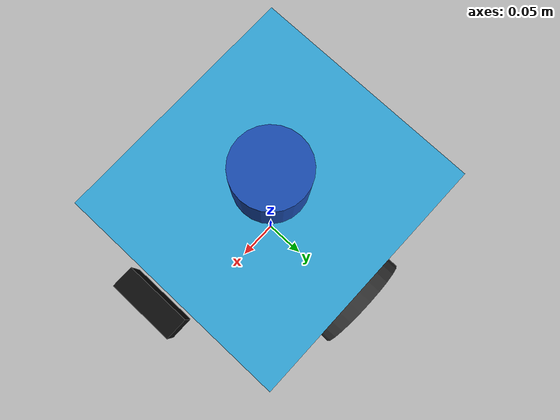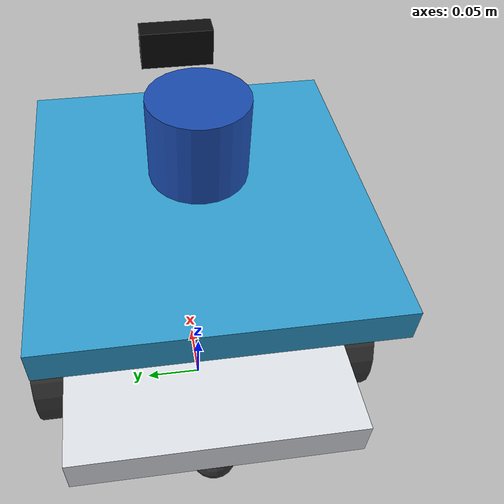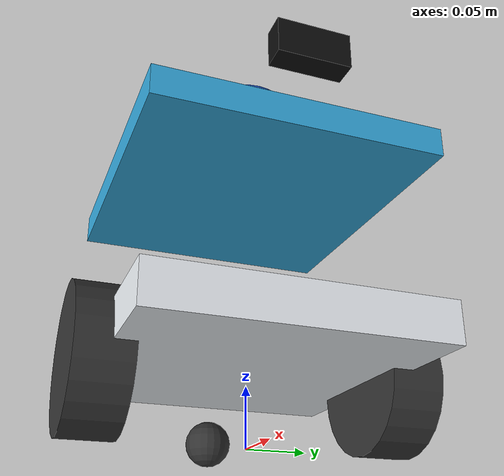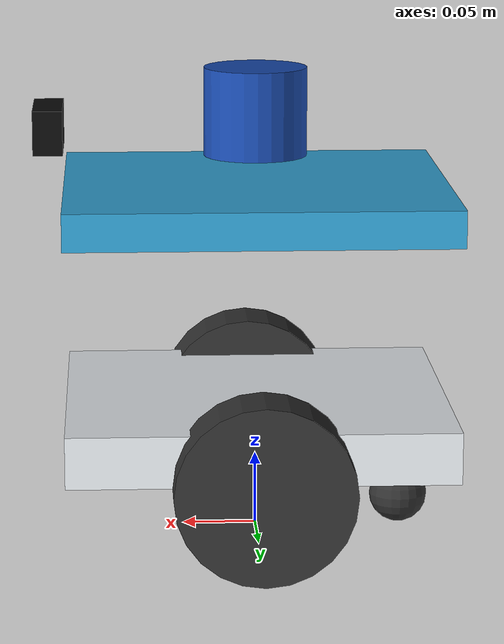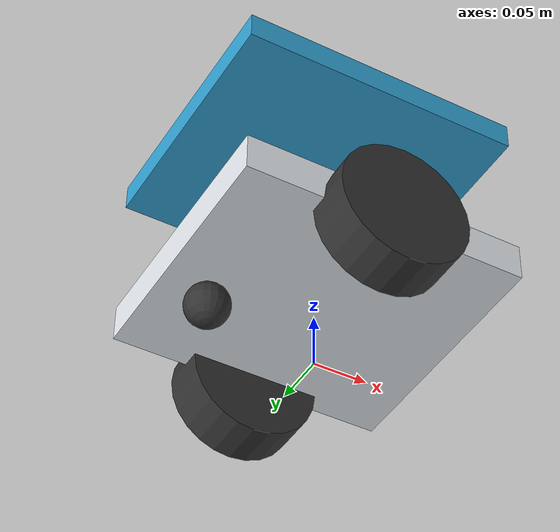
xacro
<?xml version="1.0"?>
<robot name="lumi_small_robot" xmlns:xacro="http://www.ros.org/wiki/xacro">

  <!--                      LUMI SMALL MOBILE ROBOT URDF                    -->
  <!-- Notes:                           -->
  <!-- LINK: Represents a rigid physical part of the robot (chassis, wheel). -->
  <!-- JOINT: Defines physical connection and degrees of freedom between    -->
  <!--        parent and child links (fixed, continuous, revolute).          -->
  <!-- INERTIA: Calculated rotational inertia components required by physics-->
  <!--          engines (Gazebo) to simulate mass distribution accurately.   -->
  <!-- GAZEBO PLUGINS: Simulates differential drive motor physics, 2D LiDAR  -->
  <!--                 laser scans, and camera video streams in ROS 2.      -->

  <!-- ==================== PARAMETERS & DIMENSIONS ==================== -->
  <!-- Estimated dimensions from photos using the 15 cm ruler as scale. Verify physically. -->
  <xacro:property name="chassis_length" value="0.26" /> <!-- estimated deck length: 26 cm -->
  <xacro:property name="chassis_width" value="0.24" />  <!-- estimated deck width: 24 cm -->
  <xacro:property name="chassis_height" value="0.035" /> <!-- lower plate thickness: 3.5 cm -->
  <xacro:property name="chassis_mass"   value="1.50" />   <!-- provisional lower plate mass -->
  <xacro:property name="chassis_radius" value="0.12" />

  <!-- Wheel Dimensions (Differential Drive) -->
  <xacro:property name="wheel_radius"   value="0.06" />   <!-- estimated wheel diameter: 12 cm -->
  <xacro:property name="wheel_width"    value="0.045" />  <!-- estimated wheel width: 4.5 cm -->
  <xacro:property name="wheel_track"    value="0.25" />   <!-- estimated distance between wheel centers: 25 cm -->
  <xacro:property name="wheel_mass"     value="0.30" />   <!-- provisional mass per wheel -->

  <!-- Caster Wheel (Rear Support) -->
  <xacro:property name="caster_radius"  value="0.02" />   <!-- 4cm diameter sphere -->
  <xacro:property name="caster_mass"    value="0.10" />   <!-- 100 grams -->
  <xacro:property name="caster_x_offset" value="-0.10" /> <!-- rear support position; verify physical base -->

  <!-- LiDAR Sensor -->
  <xacro:property name="lidar_radius"   value="0.035" />  <!-- approx. 7 cm diameter -->
  <xacro:property name="lidar_height"   value="0.06" />   <!-- provisional 6 cm scanner assembly height -->
  <xacro:property name="lidar_mass"     value="0.15" />   <!-- 150 grams -->

  <!-- Camera Sensor -->
  <xacro:property name="camera_length"  value="0.02" />
  <xacro:property name="camera_width"   value="0.06" />
  <xacro:property name="camera_height"  value="0.03" />
  <xacro:property name="camera_mass"    value="0.05" />

  <!-- ==================== MATERIALS & COLORS ==================== -->
  <material name="baymax_white">
    <color rgba="0.92 0.94 0.96 1.0"/>
  </material>

  <material name="baymax_accent">
    <color rgba="0.20 0.65 0.85 1.0"/>
  </material>

  <material name="dark_grey">
    <color rgba="0.20 0.20 0.20 1.0"/>
  </material>

  <material name="sensor_blue">
    <color rgba="0.10 0.30 0.70 1.0"/>
  </material>

  <material name="black">
    <color rgba="0.05 0.05 0.05 1.0"/>
  </material>

  <!-- ==================== INERTIAL CALCULATORS ==================== -->
  <xacro:macro name="cylinder_inertia" params="m r h">
    <inertial>
      <mass value="${m}"/>
      <inertia ixx="${(1/12)*m*(3*r*r + h*h)}" ixy="0.0" ixz="0.0"
               iyy="${(1/12)*m*(3*r*r + h*h)}" iyz="0.0"
               izz="${0.5*m*r*r}"/>
    </inertial>
  </xacro:macro>

  <xacro:macro name="sphere_inertia" params="m r">
    <inertial>
      <mass value="${m}"/>
      <inertia ixx="${(2/5)*m*r*r}" ixy="0.0" ixz="0.0"
               iyy="${(2/5)*m*r*r}" iyz="0.0"
               izz="${(2/5)*m*r*r}"/>
    </inertial>
  </xacro:macro>

  <xacro:macro name="box_inertia" params="m x y z">
    <inertial>
      <mass value="${m}"/>
      <inertia ixx="${(1/12)*m*(y*y + z*z)}" ixy="0.0" ixz="0.0"
               iyy="${(1/12)*m*(x*x + z*z)}" iyz="0.0"
               izz="${(1/12)*m*(x*x + y*y)}"/>
    </inertial>
  </xacro:macro>

  <!-- ==================== LINKS & JOINTS ==================== -->

  <!-- 1. BASE FOOTPRINT LINK (Ground Level Projection at Z = 0) -->
  <link name="base_footprint"/>

  <joint name="base_footprint_joint" type="fixed">
    <parent link="base_footprint"/>
    <child link="base_link"/>
    <origin xyz="0 0 ${wheel_radius}" rpy="0 0 0"/>
  </joint>

  <!-- 2. BASE LINK (Main Robot Chassis Body) -->
  <link name="base_link">
    <visual>
      <origin xyz="0 0 ${chassis_height/2}" rpy="0 0 0"/>
      <geometry>
        <box size="${chassis_length} ${chassis_width} ${chassis_height}"/>
      </geometry>
      <material name="baymax_white"/>
    </visual>

    <visual>
      <origin xyz="0 0 0.17" rpy="0 0 0"/>
      <geometry>
        <box size="${chassis_length} ${chassis_width} 0.025"/>
      </geometry>
      <material name="baymax_accent"/>
    </visual>

    <collision>
      <origin xyz="0 0 ${chassis_height/2}" rpy="0 0 0"/>
      <geometry>
        <box size="${chassis_length} ${chassis_width} ${chassis_height}"/>
      </geometry>
    </collision>

    <xacro:box_inertia m="${chassis_mass}" x="${chassis_length}" y="${chassis_width}" z="${chassis_height}"/>
  </link>

  <gazebo reference="base_link">
    <material>Gazebo/White</material>
  </gazebo>

  <!-- 3. WHEEL MACRO (Left and Right Differential Drive Wheels) -->
  <xacro:macro name="wheel" params="prefix y_reflect">
    <link name="${prefix}_wheel_link">
      <visual>
        <origin xyz="0 0 0" rpy="${pi/2} 0 0"/>
        <geometry>
          <cylinder radius="${wheel_radius}" length="${wheel_width}"/>
        </geometry>
        <material name="dark_grey"/>
      </visual>
      <collision>
        <origin xyz="0 0 0" rpy="${pi/2} 0 0"/>
        <geometry>
          <cylinder radius="${wheel_radius}" length="${wheel_width}"/>
        </geometry>
      </collision>
      <xacro:cylinder_inertia m="${wheel_mass}" r="${wheel_radius}" h="${wheel_width}"/>
    </link>

    <joint name="${prefix}_wheel_joint" type="continuous">
      <parent link="base_link"/>
      <child link="${prefix}_wheel_link"/>
      <origin xyz="0 ${y_reflect * wheel_track / 2} 0" rpy="0 0 0"/>
      <axis xyz="0 1 0"/>
    </joint>

    <gazebo reference="${prefix}_wheel_link">
      <material>Gazebo/DarkGrey</material>
      <mu1>1.0</mu1>
      <mu2>1.0</mu2>
      <kp>500000.0</kp>
      <kd>10.0</kd>
    </gazebo>
  </xacro:macro>

  <xacro:wheel prefix="left"  y_reflect="1" />
  <xacro:wheel prefix="right" y_reflect="-1" />

  <!-- 4. CASTER WHEEL (Rear Passive Balancing Ball) -->
  <link name="caster_wheel_link">
    <visual>
      <origin xyz="0 0 0" rpy="0 0 0"/>
      <geometry>
        <sphere radius="${caster_radius}"/>
      </geometry>
      <material name="dark_grey"/>
    </visual>
    <collision>
      <origin xyz="0 0 0" rpy="0 0 0"/>
      <geometry>
        <sphere radius="${caster_radius}"/>
      </geometry>
    </collision>
    <xacro:sphere_inertia m="${caster_mass}" r="${caster_radius}"/>
  </link>

  <joint name="caster_wheel_joint" type="fixed">
    <parent link="base_link"/>
    <child link="caster_wheel_link"/>
    <origin xyz="${caster_x_offset} 0 ${caster_radius - wheel_radius}" rpy="0 0 0"/>
  </joint>

  <!-- Low surface friction for caster wheel so it slides smoothly in Gazebo -->
  <gazebo reference="caster_wheel_link">
    <material>Gazebo/DarkGrey</material>
    <mu1>0.001</mu1>
    <mu2>0.001</mu2>
  </gazebo>

  <!-- 5. LIDAR SENSOR LINK -->
  <link name="lidar_link">
    <visual>
      <origin xyz="0 0 0" rpy="0 0 0"/>
      <geometry>
        <cylinder radius="${lidar_radius}" length="${lidar_height}"/>
      </geometry>
      <material name="sensor_blue"/>
    </visual>
    <collision>
      <origin xyz="0 0 0" rpy="0 0 0"/>
      <geometry>
        <cylinder radius="${lidar_radius}" length="${lidar_height}"/>
      </geometry>
    </collision>
    <xacro:cylinder_inertia m="${lidar_mass}" r="${lidar_radius}" h="${lidar_height}"/>
  </link>

  <joint name="lidar_joint" type="fixed">
    <parent link="base_link"/>
    <child link="lidar_link"/>
    <origin xyz="0 0 ${0.20 + lidar_height/2}" rpy="0 0 0"/>
  </joint>

  <!-- Alias laser_frame for RPLiDAR driver and rf2o -->
  <link name="laser_frame"/>
  <joint name="laser_frame_alias_joint" type="fixed">
    <parent link="lidar_link"/>
    <child link="laser_frame"/>
    <origin xyz="0 0 0" rpy="0 0 0"/>
  </joint>

  <gazebo reference="lidar_link">
    <material>Gazebo/Blue</material>
  </gazebo>

  <!-- 6. CAMERA SENSOR LINK -->
  <link name="camera_link">
    <visual>
      <origin xyz="0 0 0" rpy="0 0 0"/>
      <geometry>
        <box size="${camera_length} ${camera_width} ${camera_height}"/>
      </geometry>
      <material name="black"/>
    </visual>
    <collision>
      <origin xyz="0 0 0" rpy="0 0 0"/>
      <geometry>
        <box size="${camera_length} ${camera_width} ${camera_height}"/>
      </geometry>
    </collision>
    <xacro:box_inertia m="${camera_mass}" x="${camera_length}" y="${camera_width}" z="${camera_height}"/>
  </link>

  <joint name="camera_joint" type="fixed">
    <parent link="base_link"/>
    <child link="camera_link"/>
    <origin xyz="${chassis_length/2 + camera_length/2} 0 0.22" rpy="0 0 0"/>
  </joint>

  <gazebo reference="camera_link">
    <material>Gazebo/Black</material>
  </gazebo>

  <!-- Camera Optical Frame -->
  <link name="camera_optical_link"/>

  <joint name="camera_optical_joint" type="fixed">
    <parent link="camera_link"/>
    <child link="camera_optical_link"/>
    <origin xyz="0 0 0" rpy="${-pi/2} 0 ${-pi/2}"/>
  </joint>

  <!-- ==================== GAZEBO ROS PLUGINS ==================== -->

  <!-- 1. DIFFERENTIAL DRIVE MOTOR PLUGIN -->
  <gazebo>
    <plugin name="diff_drive_controller" filename="libgazebo_ros_diff_drive.so">
      <ros>
        <namespace>/</namespace>
        <remapping>cmd_vel:=/cmd_vel</remapping>
        <remapping>odom:=/odom</remapping>
      </ros>

      <!-- Wheel Joints -->
      <left_joint>left_wheel_joint</left_joint>
      <right_joint>right_wheel_joint</right_joint>

      <!-- Kinematics -->
      <wheel_separation>${wheel_track}</wheel_separation>
      <wheel_diameter>${2 * wheel_radius}</wheel_diameter>

      <!-- Limits & Torque -->
      <max_wheel_torque>20.0</max_wheel_torque>
      <max_wheel_acceleration>1.0</max_wheel_acceleration>

      <!-- Frame & Telemetry Output -->
      <publish_odom>true</publish_odom>
      <publish_odom_tf>true</publish_odom_tf>
      <publish_wheel_tf>true</publish_wheel_tf>

      <odometry_frame>odom</odometry_frame>
      <robot_base_frame>base_footprint</robot_base_frame>
    </plugin>
  </gazebo>

  <!-- 2. 2D LIDAR RAY SENSOR PLUGIN -->
  <gazebo reference="lidar_link">
    <sensor type="ray" name="lidar_sensor">
      <pose>0 0 0 0 0 0</pose>
      <visualize>true</visualize>
      <update_rate>10.0</update_rate>
      <ray>
        <scan>
          <horizontal>
            <samples>720</samples>
            <resolution>1</resolution>
            <min_angle>-3.14159</min_angle>
            <max_angle>3.14159</max_angle>
          </horizontal>
        </scan>
        <range>
          <min>0.12</min>
          <max>10.0</max>
          <resolution>0.01</resolution>
        </range>
        <noise>
          <type>gaussian</type>
          <mean>0.0</mean>
          <stddev>0.01</stddev>
        </noise>
      </ray>
      <plugin name="lidar_plugin" filename="libgazebo_ros_ray_sensor.so">
        <ros>
          <remapping>~/out:=/scan</remapping>
        </ros>
        <output_type>sensor_msgs/LaserScan</output_type>
        <frame_name>lidar_link</frame_name>
      </plugin>
    </sensor>
  </gazebo>

  <!-- 3. RGB CAMERA SENSOR PLUGIN -->
  <gazebo reference="camera_link">
    <sensor type="camera" name="camera_sensor">
      <update_rate>30.0</update_rate>
      <camera name="head">
        <horizontal_fov>1.3962634</horizontal_fov>
        <image>
          <width>640</width>
          <height>480</height>
          <format>R8G8B8</format>
        </image>
        <clip>
          <near>0.02</near>
          <far>300</far>
        </clip>
        <noise>
          <type>gaussian</type>
          <mean>0.0</mean>
          <stddev>0.007</stddev>
        </noise>
      </camera>
      <plugin name="camera_plugin" filename="libgazebo_ros_camera.so">
        <ros>
          <remapping>image_raw:=/camera/image_raw</remapping>
        </ros>
        <camera_name>camera</camera_name>
        <frame_name>camera_optical_link</frame_name>
      </plugin>
    </sensor>
  </gazebo>

</robot>
